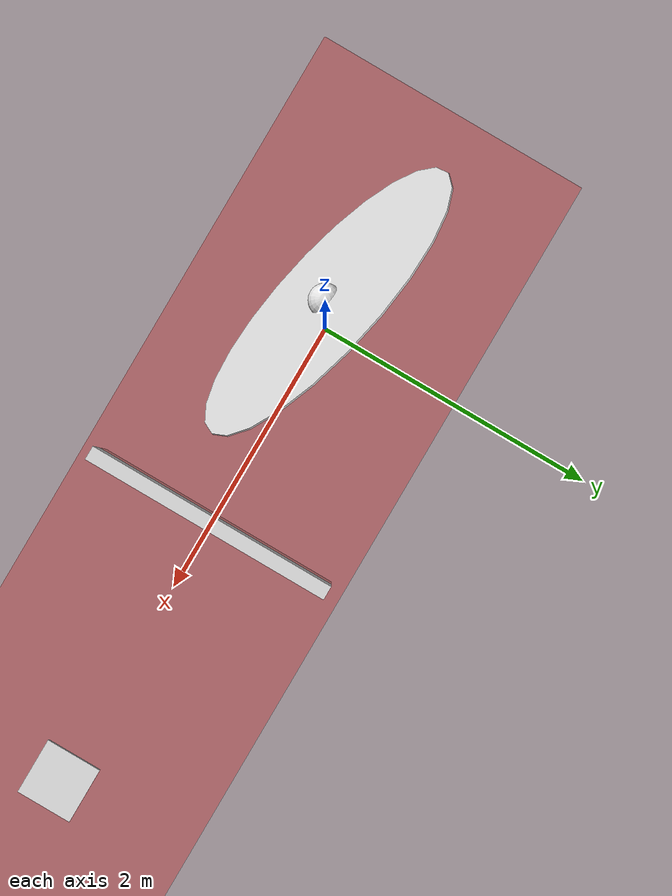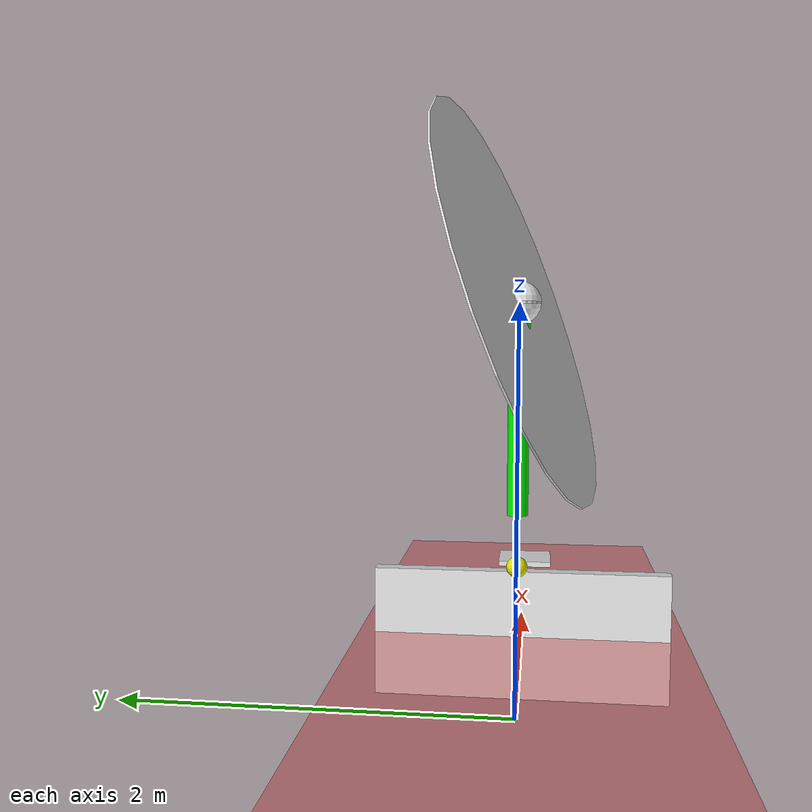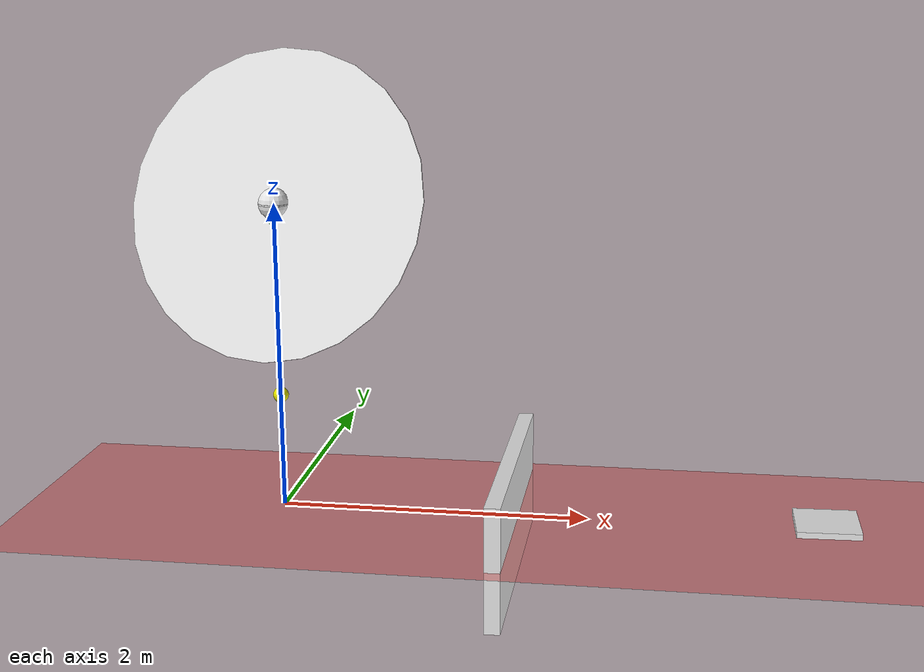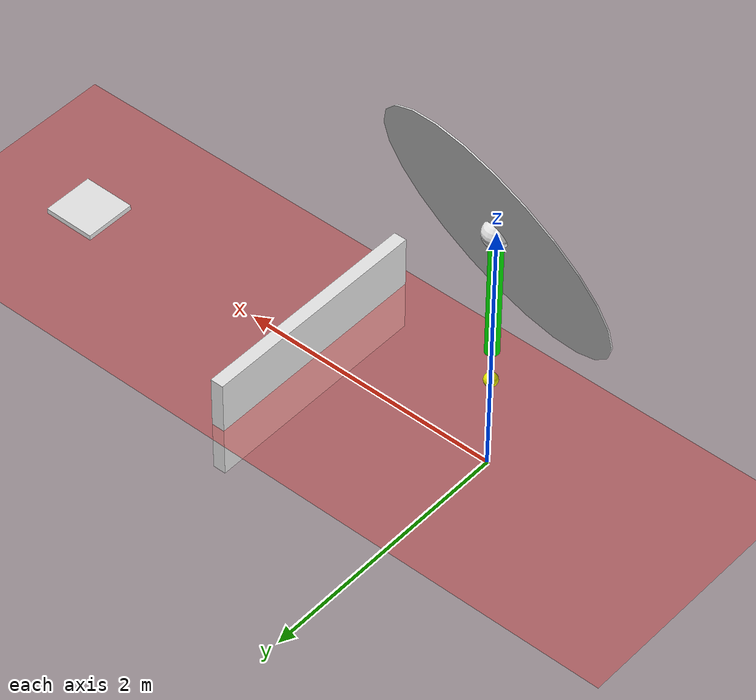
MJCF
<mujoco>
 <visual>
<headlight ambient="0.5 0.5 0.5"/>
 </visual>
	<option timestep="0.001" integrator="RK4" gravity="0 0 -9.81">
		<flag sensornoise="disable" contact="enable" energy="enable"/>
	</option>

	<worldbody>
		<geom type="plane" size="100 1 0.1" rgba=".9 0 0 1"/>
		<body name="floor" pos="3.5 0 0.05" euler = "0 -0.8 0">
			<geom type="box" size="0.2 0.2 0.02" rgba = "0.9 0.9 0.9 0.9"/>
		</body>
		<body name="floor_1" pos="1.5 0 0.00" euler = "0 0 0">
			<geom type="box" size="0.05 0.9 0.4" rgba = "0.9 0.9 0.9 0.9"/>
		</body>
		<body name="torso" pos="0 0 2">
			<joint name="x" type="slide" pos="0 0 0" axis="1 0 0" />
			<joint name="z" type="slide" pos="0 0 0" axis="0 0 1" />
			<geom type="sphere" size="0.1" rgba=".9 .9 .9 1" mass="1"/>
			<site name="accel_site" pos="0 0 0" size="0.1" rgba=".9 .9 .9 1" type="cylinder"/>
			<site name="range_site" pos="0 0 0" size="1" euler="70 170 0" rgba=".9 .9 .9 1" type="cylinder"/>
			<body name="leg" pos="0 0 -0.5" euler="0 0 0">
				<joint name="hip" type="hinge" pos="0 0 0.5" axis="0 -1 0" />
				<geom type="cylinder" size=".05 .5" rgba="0 .9 0 1" mass="1"/>
				<body name="foot" pos="0 0 -0.75">
				<joint name="knee" type="slide" pos="0 0 0.25" axis="0 0 -1" />
				<geom type="cylinder" pos="0 0 0.125" size=".01 .125" rgba="0 0 .9 1" mass="0"/>
				<geom type="sphere" size="0.05" rgba=".9 .9 0 1" mass="0.1"/>
				</body>
			</body>
		</body>
	</worldbody>

	<actuator>
		<position name="pservo-hip" joint="hip" kp="0"/>
		<velocity name="vservo-hip" joint="hip" kv="0"/>
		<position name="pservo-knee" joint="knee" kp="0"/>
		<velocity name="vservo-knee" joint="knee" kv="0"/>
	</actuator>

	<sensor> -->
		<rangefinder name="rangefinder" noise="0.1" site="range_site"/>
	</sensor>

</mujoco>
